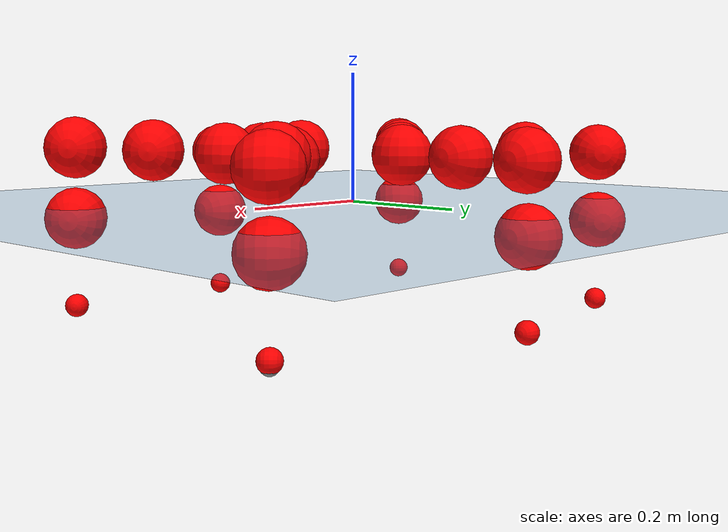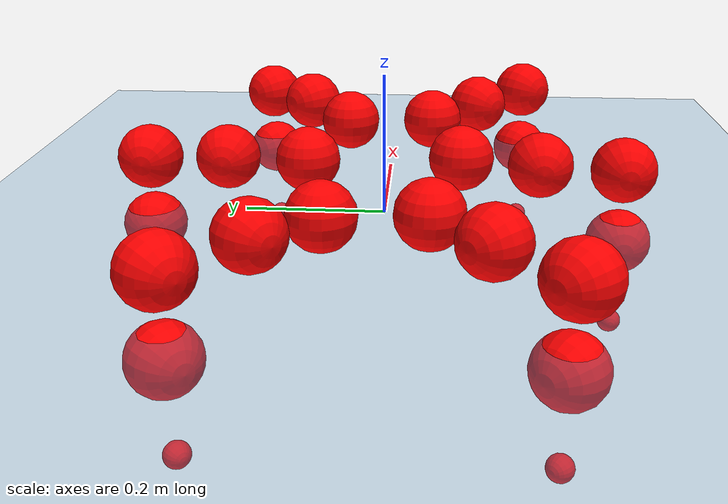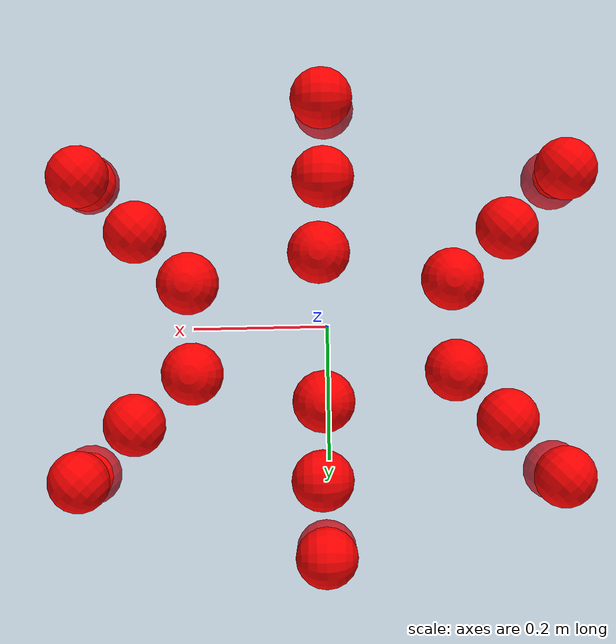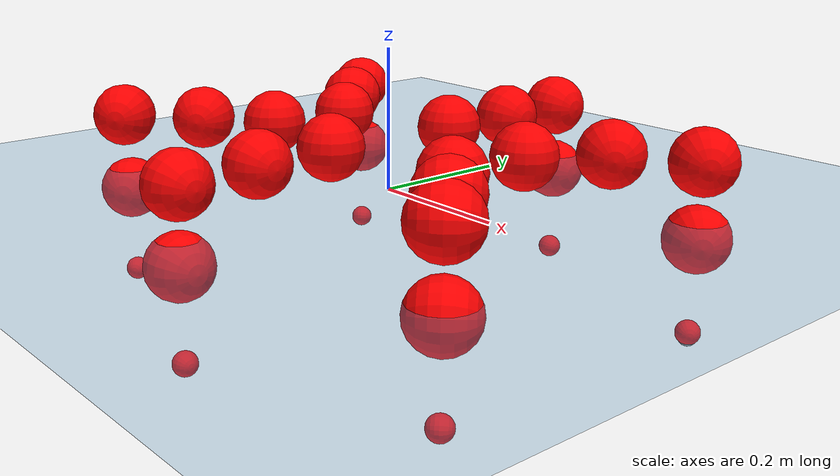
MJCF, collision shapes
<mujoco model="Golem">
  <compiler angle="radian" assetdir="assets" balanceinertia="true" inertiafromgeom="false"/>

  <option timestep="0.005" density="1.2" viscosity="2e-05"/>

  <size nkey="1"/>

  <visual>
    <quality shadowsize="8192"/>
    <map shadowclip="0.5"/>
  </visual>

  <default>
    <default class="/">
      <joint armature="0.01" damping="0.01" frictionloss="0.01"/>
      <geom contype="0" conaffinity="0" group="1" solref="-1000 -80"/>
      <site size="0.01 0.005 0.005" group="5"/>
      <general forcelimited="true" biastype="affine" gainprm="25" biasprm="0 -25 -0.5"/>
      <default class="visual">
        <geom type="mesh" group="2"/>
      </default>
      <default class="collision">
        <geom group="3"/>
      </default>
      <default class="foot">
        <geom size="0.01 0 0" condim="6" group="4" priority="1" solimp="0.015 1 0.01"/>
      </default>
      <default class="reward_collision_sphere">
        <geom group="5" rgba="1 0 0 1"/>
      </default>
    </default>
  </default>

  <asset>
    <texture type="skybox" colorspace="auto" name="//unnamed_texture_0" builtin="gradient" rgb1="0.95 0.95 0.95" rgb2="0.95 0.95 0.95" width="100" height="600"/>
    <texture type="2d" colorspace="auto" name="texplane" builtin="checker" rgb1="0.345 0.575 0.748" rgb2="0.345 0.575 0.748" markrgb="1 1 1" width="512" height="512"/>
    <material name="MatPlane" class="/" texture="texplane" texuniform="true" texrepeat="2 2" specular="0.9"/>
    <mesh name="body" class="/" file="body.stl" scale="0.001 0.001 0.001"/>
    <mesh name="coxa" class="/" file="coxa.stl" scale="0.001 0.001 0.001"/>
    <mesh name="femur" class="/" file="femur.stl" scale="0.001 0.001 0.001"/>
    <mesh name="tibia" class="/" file="tibia.stl" scale="0.001 0.001 0.001"/>
    <mesh name="tarsus" class="/" file="tarsus.stl" scale="0.001 0.001 0.001"/>
  </asset>

  <worldbody>
    <geom name="floor" class="/" size="100 100 0.125" type="plane" group="0" material="MatPlane"/>
    <light name="toplight_shadow" class="/" pos="0 0 5" dir="0.0990148 0.0990148 -0.990148" type="directional" ambient="0.04 0.04 0.04" diffuse="0.55 0.55 0.55" specular="0.12 0.12 0.12"/>
    <light name="toplight_fill" class="/" pos="0 0 5" dir="0.0990148 0.0990148 -0.990148" type="directional" castshadow="false" ambient="0.04 0.04 0.04" diffuse="0.3 0.3 0.3" specular="0.08 0.08 0.08"/>
    <body name="trunk" pos="0.0038545 0.000390649 0.00197143" quat="0.999994 -0.00342248 0.00080605 -0.000437209">
      <inertial pos="-0.00176722 -0.00825737 -0.00810099" quat="0.999958 0.00331836 0.00853543 0.00100211" mass="5.84635" diaginertia="0.0295224 0.0134288 0.0221275"/>
      <joint name="//unnamed_joint_0" type="free"/>
      <geom name="//unnamed_geom_1" class="/" pos="0 0 0.0736752" quat="1 0 0 0" type="mesh" rgba="0.9 0.9 0.9 1" mesh="body"/>
      <site name="imu" class="/" pos="0.153219 -0.0261345 0.121521" size="0.0114097"/>
      <camera name="track" class="/" pos="0 -2.10761 0" quat="0.707107 0.707107 0 0" mode="trackcom"/>
      <camera name="ego_camera" class="/" pos="0.158332 0 0.115117" quat="-0.5 -0.5 0.5 0.5"/>
      <body name="coxa_RR" pos="-0.213033 -0.0930298 0.072797" quat="0.383993 0.00166406 0.00182469 -0.923333">
        <inertial pos="-0.00277427 -0.000610749 -0.000812994" quat="0.999111 0.037077 0.0200685 0.000558417" mass="0.247063" diaginertia="0.0248663 0.0120068 0.0184151"/>
        <joint name="coxa_joint_RR" class="/" pos="0 0 0" axis="-0.000150818 0.00457982 -0.99999" range="-3.13537 3.30506" armature="0.0068393" damping="0" frictionloss="0.0115818"/>
        <geom name="//unnamed_geom_2" class="/" type="mesh" rgba="0.2 0.2 0.2 1" mesh="coxa"/>
        <geom name="//unnamed_geom_3" class="reward_collision_sphere" size="0.0456389" pos="-0.0365381 0 0"/>
        <body name="femur_RR" pos="0.0712214 -0.00579706 0.00300308" quat="0.499507 -0.500447 0.499402 0.500642">
          <inertial pos="-0.00649523 -0.000496789 -0.00115675" quat="0.999533 -0.00370503 0.00212958 0.0302571" mass="0.297179" diaginertia="0.0266345 0.0129342 0.0205546"/>
          <joint name="femur_joint_RR" class="/" pos="0 0 0" axis="-0.000356519 -0.00479858 -0.999988" range="-3.18091 3.19099" armature="0.0110491" damping="0.0513284" frictionloss="0.0111864"/>
          <geom name="//unnamed_geom_4" class="/" type="mesh" rgba="0.9 0.9 0.9 1" mesh="femur"/>
          <geom name="//unnamed_geom_5" class="reward_collision_sphere" size="0.0456389"/>
          <body name="tibia_RR" pos="-0.000734821 -0.12098 -0.00215558" quat="0.000143495 1 0.000397199 -0.000669313">
            <inertial pos="0.00410794 0.00277607 0.00212425" quat="0.999997 0.000500378 -0.00204894 0.00147541" mass="0.268735" diaginertia="0.0269887 0.0127748 0.0193199"/>
            <joint name="tibia_joint_RR" class="/" pos="0 0 0" axis="-0.0245905 0.00378554 0.99969" range="-3.13591 3.11277" armature="0.0110093" damping="0.0171612" frictionloss="0.0121076"/>
            <geom name="//unnamed_geom_6" class="/" type="mesh" rgba="0.2 0.2 0.2 1" mesh="tibia"/>
            <geom name="//unnamed_geom_7" class="reward_collision_sphere" size="0.0456389"/>
            <body name="tarsus_RR" pos="0.112571 -0.0040341 -0.000157486" quat="0.999999 -0.00100298 0.000667243 0.000109572">
              <inertial pos="0.0779568 -0.00131733 0.000467601" quat="0.501253 0.500191 0.498251 0.5003" mass="0.272436" diaginertia="0.0239562 0.0115933 0.0189674"/>
              <joint name="tarsus_joint_RR" class="/" pos="0 0 0" axis="-0.0107203 0.0103965 0.999888" stiffness="0.0103236" range="-3.1226 3.13056" armature="0.0125912" damping="0.0477557" frictionloss="0.0140742"/>
              <geom name="//unnamed_geom_8" class="/" type="mesh" rgba="0.9 0.9 0.9 1" mesh="tarsus"/>
              <geom name="foot_1" class="foot" size="0.00996068" pos="0.136409 0 0" quat="0 -0.707107 0 0.707107"/>
              <geom name="//unnamed_geom_10" class="reward_collision_sphere" size="0.0456389"/>
              <geom name="//unnamed_geom_11" class="reward_collision_sphere" size="0.0171146" pos="0.130928 0 0"/>
              <site name="foot_1" class="foot" pos="0.136409 0 0" quat="0 -0.707107 0 0.707107" size="0.0114097"/>
            </body>
          </body>
        </body>
      </body>
      <body name="coxa_RM" pos="0.00648547 -0.145341 0.0777022" quat="0.707144 6.40436e-06 -2.84974e-06 -0.707069">
        <inertial pos="0.00616175 0.00205798 -0.00147098" quat="0.99998 0.00405183 -0.00406503 -0.00252773" mass="0.271279" diaginertia="0.0248961 0.0117502 0.0189145"/>
        <joint name="coxa_joint_RM" class="/" pos="0 0 0" axis="0.00205853 -0.00367093 -0.999991" range="-3.22988 3.14033" armature="0.00912975" damping="0.00639823" frictionloss="0.0107831"/>
        <geom name="//unnamed_geom_12" class="/" type="mesh" rgba="0.2 0.2 0.2 1" mesh="coxa"/>
        <geom name="//unnamed_geom_13" class="reward_collision_sphere" size="0.0456389" pos="-0.0365381 0 0"/>
        <body name="femur_RM" pos="0.0737558 -0.00774788 -0.00619647" quat="0.50053 -0.499271 0.500326 0.499872">
          <inertial pos="0.00205484 0.00180623 -5.07243e-05" quat="0.999259 -0.00823182 0.0181628 0.0329355" mass="0.3246" diaginertia="0.0299605 0.0146865 0.0219075"/>
          <joint name="femur_joint_RM" class="/" pos="0 0 0" axis="-0.00304603 -0.000562955 -0.999995" range="-2.97969 3.11626" armature="0.0127221" damping="0.0202302" frictionloss="0.0113862"/>
          <geom name="//unnamed_geom_14" class="/" type="mesh" rgba="0.9 0.9 0.9 1" mesh="femur"/>
          <geom name="//unnamed_geom_15" class="reward_collision_sphere" size="0.0456389"/>
          <body name="tibia_RM" pos="0.00613545 -0.115497 0.000817244" quat="0.00303077 0.999992 -0.000395206 0.00273815">
            <inertial pos="0.00342827 -5.26113e-05 -0.00124565" quat="0.999773 0.0086659 0.0183709 -0.00638701" mass="0.296536" diaginertia="0.0255157 0.0136026 0.0216384"/>
            <joint name="tibia_joint_RM" class="/" pos="0 0 0" axis="0.00333491 -0.00106521 0.999994" stiffness="0.0330707" range="-3.14199 3.12036" armature="0.010195" damping="0.0250027" frictionloss="0.0106974"/>
            <geom name="//unnamed_geom_16" class="/" type="mesh" rgba="0.2 0.2 0.2 1" mesh="tibia"/>
            <geom name="//unnamed_geom_17" class="reward_collision_sphere" size="0.0456389"/>
            <body name="tarsus_RM" pos="0.106033 0.000579443 0.00434085" quat="0.999995 -0.00287845 -0.000362288 -0.0011275">
              <inertial pos="0.0712919 0.00194934 0.000140281" quat="0.499494 0.501363 0.498964 0.500176" mass="0.302045" diaginertia="0.0264023 0.0132283 0.019573"/>
              <joint name="tarsus_joint_RM" class="/" pos="0 0 0" axis="0.0121346 0.0238648 0.999642" range="-3.07022 2.97616" armature="0.0126543" damping="0.00596232" frictionloss="0.016053"/>
              <geom name="//unnamed_geom_18" class="/" type="mesh" rgba="0.9 0.9 0.9 1" mesh="tarsus"/>
              <geom name="foot_2" class="foot" size="0.0118896" pos="0.136409 0 0" quat="0 -0.707107 0 0.707107"/>
              <geom name="//unnamed_geom_20" class="reward_collision_sphere" size="0.0456389"/>
              <geom name="//unnamed_geom_21" class="reward_collision_sphere" size="0.0171146" pos="0.130928 0 0"/>
              <site name="foot_2" class="foot" pos="0.136409 0 0" quat="0 -0.707107 0 0.707107" size="0.0114097"/>
            </body>
          </body>
        </body>
      </body>
      <body name="coxa_RF" pos="0.222886 -0.09255 0.0769738" quat="0.923126 -0.00145504 -0.00195482 -0.384491">
        <inertial pos="-0.00650858 -0.00677041 0.000309625" quat="0.999968 0.00542634 0.00365923 -0.00456256" mass="0.303432" diaginertia="0.0261594 0.0133713 0.0204147"/>
        <joint name="coxa_joint_RF" class="/" pos="0 0 0" axis="0.00201311 0.00238901 -0.999995" stiffness="0.0419031" range="-3.15911 3.27533" armature="0.0114082" damping="0" frictionloss="0.0126848"/>
        <geom name="//unnamed_geom_22" class="/" type="mesh" rgba="0.2 0.2 0.2 1" mesh="coxa"/>
        <geom name="//unnamed_geom_23" class="reward_collision_sphere" size="0.0456389" pos="-0.0365381 0 0"/>
        <body name="femur_RF" pos="0.0696344 -0.000121128 0.00382235" quat="0.49936 -0.5023 0.500046 0.498285">
          <inertial pos="0.0007607 0.00215062 -0.0076409" quat="0.999632 -0.00785432 0.00555896 -0.0253697" mass="0.313317" diaginertia="0.0295458 0.0142682 0.0239847"/>
          <joint name="femur_joint_RF" class="/" pos="0 0 0" axis="0.0397566 5.80951e-05 -0.999209" range="-3.1821 3.17855" armature="0.00640624" damping="0.0241149" frictionloss="0.00898141"/>
          <geom name="//unnamed_geom_24" class="/" type="mesh" rgba="0.9 0.9 0.9 1" mesh="femur"/>
          <geom name="//unnamed_geom_25" class="reward_collision_sphere" size="0.0456389"/>
          <body name="tibia_RF" pos="-0.00282729 -0.114898 0.000634063" quat="0.000580379 1 -4.18407e-05 0.000621335">
            <inertial pos="-0.00156119 0.00098974 -0.00124744" quat="0.999741 -0.011939 0.0143995 0.0129918" mass="0.306623" diaginertia="0.0290561 0.0139224 0.0191179"/>
            <joint name="tibia_joint_RF" class="/" pos="0 0 0" axis="-0.0002157 0.00248596 0.999997" stiffness="0.0132665" range="-3.13491 3.0022" armature="0.0127313" damping="0.0107552" frictionloss="0.0115937"/>
            <geom name="//unnamed_geom_26" class="/" type="mesh" rgba="0.2 0.2 0.2 1" mesh="tibia"/>
            <geom name="//unnamed_geom_27" class="reward_collision_sphere" size="0.0456389"/>
            <body name="tarsus_RF" pos="0.104749 -2.57641e-05 -0.000367528" quat="0.999992 0.00384274 0.000708652 -0.000390852">
              <inertial pos="0.0725469 -0.000136111 -9.62397e-05" quat="0.488323 0.50841 0.502018 0.501036" mass="0.303808" diaginertia="0.0277621 0.0130648 0.0224113"/>
              <joint name="tarsus_joint_RF" class="/" pos="0 0 0" axis="-0.00278134 0.00229761 0.999993" range="-3.13634 3.09574" armature="0.0114629" damping="0.0167647" frictionloss="0.00996443"/>
              <geom name="//unnamed_geom_28" class="/" type="mesh" rgba="0.9 0.9 0.9 1" mesh="tarsus"/>
              <geom name="foot_3" class="foot" size="0.00883447" pos="0.136409 0 0" quat="0 -0.707107 0 0.707107"/>
              <geom name="//unnamed_geom_30" class="reward_collision_sphere" size="0.0456389"/>
              <geom name="//unnamed_geom_31" class="reward_collision_sphere" size="0.0171146" pos="0.130928 0 0"/>
              <site name="foot_3" class="foot" pos="0.136409 0 0" quat="0 -0.707107 0 0.707107" size="0.0114097"/>
            </body>
          </body>
        </body>
      </body>
      <body name="coxa_LR" pos="-0.216487 0.0913817 0.0696898" quat="0.384668 -0.00120208 0.00162643 0.923053">
        <inertial pos="-0.000321362 -0.00199333 0.000750405" quat="0.999978 -0.00515969 0.00369801 -0.00215336" mass="0.306172" diaginertia="0.0291688 0.0135974 0.0226466"/>
        <joint name="coxa_joint_LR" class="/" pos="0 0 0" axis="0.0243836 -0.0138877 -0.999606" stiffness="0.00152454" range="-3.2405 3.14157" armature="0.0119048" damping="0" frictionloss="0.0119707"/>
        <geom name="//unnamed_geom_32" class="/" type="mesh" rgba="0.2 0.2 0.2 1" mesh="coxa"/>
        <geom name="//unnamed_geom_33" class="reward_collision_sphere" size="0.0456389" pos="-0.0365381 0 0"/>
        <body name="femur_LR" pos="0.0662725 0.000866354 0.00679009" quat="0.500007 -0.499975 0.499984 0.500034">
          <inertial pos="0.00118236 -0.00234199 -0.00141341" quat="0.999998 0.00165077 -0.00100325 -0.000421652" mass="0.296932" diaginertia="0.0262586 0.0132587 0.0195374"/>
          <joint name="femur_joint_LR" class="/" pos="0 0 0" axis="-0.00612563 -0.0114329 0.999916" stiffness="0.018192" range="-3.01549 3.01824" armature="0.0114595" damping="0.0371641" frictionloss="0.0109461"/>
          <geom name="//unnamed_geom_34" class="/" type="mesh" rgba="0.9 0.9 0.9 1" mesh="femur"/>
          <geom name="//unnamed_geom_35" class="reward_collision_sphere" size="0.0456389"/>
          <body name="tibia_LR" pos="0.00366117 -0.118525 -0.000924068" quat="0.000367156 1 -0.00028055 0.000159179">
            <inertial pos="0.00802893 -0.000517799 0.00671891" quat="0.999942 -0.00181152 -0.010596 0.000473384" mass="0.296705" diaginertia="0.0263977 0.0117568 0.0204223"/>
            <joint name="tibia_joint_LR" class="/" pos="0 0 0" axis="0.00364638 0.0061281 -0.999975" stiffness="0.0158239" range="-3.27282 3.04956" armature="0.012291" damping="0" frictionloss="0.0113541"/>
            <geom name="//unnamed_geom_36" class="/" type="mesh" rgba="0.2 0.2 0.2 1" mesh="tibia"/>
            <geom name="//unnamed_geom_37" class="reward_collision_sphere" size="0.0456389"/>
            <body name="tarsus_LR" pos="0.110625 0.0019692 0.000916145" quat="1 0.000145518 0.000206308 -8.451e-05">
              <inertial pos="0.0738964 0.000520796 0.000919734" quat="0.500842 0.49173 0.503603 0.503729" mass="0.277856" diaginertia="0.0253772 0.011534 0.0186395"/>
              <joint name="tarsus_joint_LR" class="/" pos="0 0 0" axis="-0.0301247 -0.0161264 -0.999416" range="-3.1816 3.22768" armature="0.0103267" damping="0.0194242" frictionloss="0.00894756"/>
              <geom name="//unnamed_geom_38" class="/" type="mesh" rgba="0.9 0.9 0.9 1" mesh="tarsus"/>
              <geom name="foot_4" class="foot" size="0.0117921" pos="0.136409 0 0" quat="0.707107 0 -0.707107 0"/>
              <geom name="//unnamed_geom_40" class="reward_collision_sphere" size="0.0456389"/>
              <geom name="//unnamed_geom_41" class="reward_collision_sphere" size="0.0171146" pos="0.130928 0 0"/>
              <site name="foot_4" class="foot" pos="0.136409 0 0" quat="0.707107 0 -0.707107 0" size="0.0114097"/>
            </body>
          </body>
        </body>
      </body>
      <body name="coxa_LM" pos="0.00231329 0.144197 0.074906" quat="0.707218 -0.000227725 -0.000136237 0.706996">
        <inertial pos="-0.00655907 -0.00776529 0.000663909" quat="1 0.000737739 -0.00051425 0.000232775" mass="0.3002" diaginertia="0.027296 0.0130703 0.0205601"/>
        <joint name="coxa_joint_LM" class="/" pos="0 0 0" axis="0.00710505 0.00463891 -0.999964" stiffness="0.0205907" range="-3.19029 3.19071" armature="0.0082214" damping="0.0421324" frictionloss="0.0100796"/>
        <geom name="//unnamed_geom_42" class="/" type="mesh" rgba="0.2 0.2 0.2 1" mesh="coxa"/>
        <geom name="//unnamed_geom_43" class="reward_collision_sphere" size="0.0456389" pos="-0.0365381 0 0"/>
        <body name="femur_LM" pos="0.0782808 -0.00310549 0.00124069" quat="0.50205 -0.500994 0.497101 0.499841">
          <inertial pos="0.00317012 -0.00240114 -0.0020804" quat="0.999753 -0.0166965 0.00122302 -0.0146507" mass="0.302118" diaginertia="0.0257051 0.0137301 0.0208636"/>
          <joint name="femur_joint_LM" class="/" pos="0 0 0" axis="0.00430578 -0.00145416 0.99999" range="-3.14478 3.14209" armature="0.0159193" damping="0.0317126" frictionloss="0.0126537"/>
          <geom name="//unnamed_geom_44" class="/" type="mesh" rgba="0.9 0.9 0.9 1" mesh="femur"/>
          <geom name="//unnamed_geom_45" class="reward_collision_sphere" size="0.0456389"/>
          <body name="tibia_LM" pos="0.000445901 -0.111797 0.00395826" quat="0.000326781 1 0.000680327 -0.000438847">
            <inertial pos="0.000470149 -0.00584765 -0.00124823" quat="0.999999 -0.00130937 -0.000521204 0.000456925" mass="0.312059" diaginertia="0.0278418 0.0125608 0.0189845"/>
            <joint name="tibia_joint_LM" class="/" pos="0 0 0" axis="0.010713 -0.00699182 -0.999918" range="-3.14261 3.06029" armature="0.0114261" damping="0.0331512" frictionloss="0.0128723"/>
            <geom name="//unnamed_geom_46" class="/" type="mesh" rgba="0.2 0.2 0.2 1" mesh="tibia"/>
            <geom name="//unnamed_geom_47" class="reward_collision_sphere" size="0.0456389"/>
            <body name="tarsus_LM" pos="0.103171 0.00360029 0.000599504" quat="1 -4.89427e-06 -2.87781e-06 -7.16743e-06">
              <inertial pos="0.0704508 0.000277608 0.000696718" quat="0.502114 0.492868 0.505056 0.499881" mass="0.24785" diaginertia="0.0244368 0.0123661 0.0200357"/>
              <joint name="tarsus_joint_LM" class="/" pos="0 0 0" axis="-0.00203364 -0.00271472 -0.999994" range="-3.13202 3.20758" armature="0.0104502" damping="0" frictionloss="0.0115081"/>
              <geom name="//unnamed_geom_48" class="/" type="mesh" rgba="0.9 0.9 0.9 1" mesh="tarsus"/>
              <geom name="foot_5" class="foot" size="0.0116581" pos="0.136409 0 0" quat="0.707107 0 -0.707107 0"/>
              <geom name="//unnamed_geom_50" class="reward_collision_sphere" size="0.0456389"/>
              <geom name="//unnamed_geom_51" class="reward_collision_sphere" size="0.0171146" pos="0.130928 0 0"/>
              <site name="foot_5" class="foot" pos="0.136409 0 0" quat="0.707107 0 -0.707107 0" size="0.0114097"/>
            </body>
          </body>
        </body>
      </body>
      <body name="coxa_LF" pos="0.218444 0.0903876 0.075145" quat="0.923895 0.000131693 -6.12645e-05 0.382646">
        <inertial pos="7.70126e-05 0.0013406 0.000401468" quat="0.999999 8.08134e-05 0.00112421 -0.000233196" mass="0.31036" diaginertia="0.0274639 0.0127036 0.0195044"/>
        <joint name="coxa_joint_LF" class="/" pos="0 0 0" axis="0.00478707 -0.0355012 -0.999358" stiffness="0.0031603" range="-3.09247 3.15721" armature="0.0115014" damping="0.0130759" frictionloss="0.011711"/>
        <geom name="//unnamed_geom_52" class="/" type="mesh" rgba="0.2 0.2 0.2 1" mesh="coxa"/>
        <geom name="//unnamed_geom_53" class="reward_collision_sphere" size="0.0456389" pos="-0.0365381 0 0"/>
        <body name="femur_LF" pos="0.0737905 -0.00796414 0.00830473" quat="0.50034 -0.500197 0.499442 0.50002">
          <inertial pos="0.00544917 -0.00103794 -0.00101188" quat="0.999968 0.00069191 -0.00770762 -0.00212719" mass="0.290115" diaginertia="0.0271896 0.0140879 0.021696"/>
          <joint name="femur_joint_LF" class="/" pos="0 0 0" axis="0.025804 -0.00322657 0.999662" range="-3.15112 3.26488" armature="0.0140769" damping="0.0176525" frictionloss="0.0123449"/>
          <geom name="//unnamed_geom_54" class="/" type="mesh" rgba="0.9 0.9 0.9 1" mesh="femur"/>
          <geom name="//unnamed_geom_55" class="reward_collision_sphere" size="0.0456389"/>
          <body name="tibia_LF" pos="0.00672191 -0.116673 -0.00118033" quat="-0.000394402 1 -0.000226231 0.00023046">
            <inertial pos="0.000615152 -0.00114335 0.00209856" quat="0.999486 0.00132543 0.0320381 -0.000474572" mass="0.30626" diaginertia="0.0270286 0.0131789 0.0199487"/>
            <joint name="tibia_joint_LF" class="/" pos="0 0 0" axis="0.0015299 0.000906555 -0.999998" range="-3.11208 3.17553" armature="0.0161076" damping="0.0364344" frictionloss="0.0118266"/>
            <geom name="//unnamed_geom_56" class="/" type="mesh" rgba="0.2 0.2 0.2 1" mesh="tibia"/>
            <geom name="//unnamed_geom_57" class="reward_collision_sphere" size="0.0456389"/>
            <body name="tarsus_LF" pos="0.10412 -0.000881191 -0.000999238" quat="0.999992 -0.000269065 -0.00177612 -0.00367648">
              <inertial pos="0.0685326 0.0060718 0.00216054" quat="0.491664 0.504235 0.501924 0.502082" mass="0.321689" diaginertia="0.0279543 0.0137084 0.0208115"/>
              <joint name="tarsus_joint_LF" class="/" pos="0 0 0" axis="0.0292038 -0.0016554 -0.999572" stiffness="0.00629195" range="-3.25045 3.18486" armature="0.0125449" damping="0" frictionloss="0.0106238"/>
              <geom name="//unnamed_geom_58" class="/" type="mesh" rgba="0.9 0.9 0.9 1" mesh="tarsus"/>
              <geom name="foot_6" class="foot" size="0.0134222" pos="0.136409 0 0" quat="0.707107 0 -0.707107 0"/>
              <geom name="//unnamed_geom_60" class="reward_collision_sphere" size="0.0456389"/>
              <geom name="//unnamed_geom_61" class="reward_collision_sphere" size="0.0171146" pos="0.130928 0 0"/>
              <site name="foot_6" class="foot" pos="0.136409 0 0" quat="0.707107 0 -0.707107 0" size="0.0114097"/>
            </body>
          </body>
        </body>
      </body>
    </body>
  </worldbody>

  <contact>
    <pair class="/" geom1="floor" geom2="foot_1" name="//unnamed_contact_0"/>
    <pair class="/" geom1="floor" geom2="foot_2" name="//unnamed_contact_1"/>
    <pair class="/" geom1="floor" geom2="foot_3" name="//unnamed_contact_2"/>
    <pair class="/" geom1="floor" geom2="foot_4" name="//unnamed_contact_3"/>
    <pair class="/" geom1="floor" geom2="foot_5" name="//unnamed_contact_4"/>
    <pair class="/" geom1="floor" geom2="foot_6" name="//unnamed_contact_5"/>
  </contact>

  <actuator>
    <general name="coxa_joint_RR" class="/" joint="coxa_joint_RR" forcerange="-9.03542 9.03542" gainprm="25.9633" biasprm="0 -25.9633 -0.590578"/>
    <general name="femur_joint_RR" class="/" joint="femur_joint_RR" forcerange="-8.23803 8.23803" gainprm="25.9633" biasprm="0 -25.9633 -0.590578"/>
    <general name="tibia_joint_RR" class="/" joint="tibia_joint_RR" forcerange="-8.90352 8.90352" gainprm="25.9633" biasprm="0 -25.9633 -0.590578"/>
    <general name="tarsus_joint_RR" class="/" joint="tarsus_joint_RR" forcerange="-7.98275 7.98275" gainprm="25.9633" biasprm="0 -25.9633 -0.590578"/>
    <general name="coxa_joint_RM" class="/" joint="coxa_joint_RM" forcerange="-8.08151 8.08151" gainprm="25.9633" biasprm="0 -25.9633 -0.590578"/>
    <general name="femur_joint_RM" class="/" joint="femur_joint_RM" forcerange="-9.73139 9.73139" gainprm="25.9633" biasprm="0 -25.9633 -0.590578"/>
    <general name="tibia_joint_RM" class="/" joint="tibia_joint_RM" forcerange="-8.29304 8.29304" gainprm="25.9633" biasprm="0 -25.9633 -0.590578"/>
    <general name="tarsus_joint_RM" class="/" joint="tarsus_joint_RM" forcerange="-8.40485 8.40485" gainprm="25.9633" biasprm="0 -25.9633 -0.590578"/>
    <general name="coxa_joint_RF" class="/" joint="coxa_joint_RF" forcerange="-9.90248 9.90248" gainprm="25.9633" biasprm="0 -25.9633 -0.590578"/>
    <general name="femur_joint_RF" class="/" joint="femur_joint_RF" forcerange="-9.58739 9.58739" gainprm="25.9633" biasprm="0 -25.9633 -0.590578"/>
    <general name="tibia_joint_RF" class="/" joint="tibia_joint_RF" forcerange="-7.20029 7.20029" gainprm="25.9633" biasprm="0 -25.9633 -0.590578"/>
    <general name="tarsus_joint_RF" class="/" joint="tarsus_joint_RF" forcerange="-8.13584 8.13584" gainprm="25.9633" biasprm="0 -25.9633 -0.590578"/>
    <general name="coxa_joint_LR" class="/" joint="coxa_joint_LR" forcerange="-7.62921 7.62921" gainprm="25.9633" biasprm="0 -25.9633 -0.590578"/>
    <general name="femur_joint_LR" class="/" joint="femur_joint_LR" forcerange="-8.86944 8.86944" gainprm="25.9633" biasprm="0 -25.9633 -0.590578"/>
    <general name="tibia_joint_LR" class="/" joint="tibia_joint_LR" forcerange="-10.4846 10.4846" gainprm="25.9633" biasprm="0 -25.9633 -0.590578"/>
    <general name="tarsus_joint_LR" class="/" joint="tarsus_joint_LR" forcerange="-5.94822 5.94822" gainprm="25.9633" biasprm="0 -25.9633 -0.590578"/>
    <general name="coxa_joint_LM" class="/" joint="coxa_joint_LM" forcerange="-7.90052 7.90052" gainprm="25.9633" biasprm="0 -25.9633 -0.590578"/>
    <general name="femur_joint_LM" class="/" joint="femur_joint_LM" forcerange="-8.38971 8.38971" gainprm="25.9633" biasprm="0 -25.9633 -0.590578"/>
    <general name="tibia_joint_LM" class="/" joint="tibia_joint_LM" forcerange="-8.55897 8.55897" gainprm="25.9633" biasprm="0 -25.9633 -0.590578"/>
    <general name="tarsus_joint_LM" class="/" joint="tarsus_joint_LM" forcerange="-8.41748 8.41748" gainprm="25.9633" biasprm="0 -25.9633 -0.590578"/>
    <general name="coxa_joint_LF" class="/" joint="coxa_joint_LF" forcerange="-8.52324 8.52324" gainprm="25.9633" biasprm="0 -25.9633 -0.590578"/>
    <general name="femur_joint_LF" class="/" joint="femur_joint_LF" forcerange="-8.23869 8.23869" gainprm="25.9633" biasprm="0 -25.9633 -0.590578"/>
    <general name="tibia_joint_LF" class="/" joint="tibia_joint_LF" forcerange="-8.41111 8.41111" gainprm="25.9633" biasprm="0 -25.9633 -0.590578"/>
    <general name="tarsus_joint_LF" class="/" joint="tarsus_joint_LF" forcerange="-7.61908 7.61908" gainprm="25.9633" biasprm="0 -25.9633 -0.590578"/>
  </actuator>

  <sensor>
    <gyro site="imu" name="imu_angular_velocity"/>
    <velocimeter site="imu" name="imu_linear_velocity"/>
    <framelinvel objtype="site" objname="foot_1" name="foot_1_global_linear_velocity"/>
    <framelinvel objtype="site" objname="foot_2" name="foot_2_global_linear_velocity"/>
    <framelinvel objtype="site" objname="foot_3" name="foot_3_global_linear_velocity"/>
    <framelinvel objtype="site" objname="foot_4" name="foot_4_global_linear_velocity"/>
    <framelinvel objtype="site" objname="foot_5" name="foot_5_global_linear_velocity"/>
    <framelinvel objtype="site" objname="foot_6" name="foot_6_global_linear_velocity"/>
  </sensor>

  <keyframe>
    <key name="home" qpos="0 0 0.1457 1 0 0 0 0 0 0 0 0 0 0 0 0 0 0 0 0 0 0 0 0 0 0 0 0 0 0 0"/>
  </keyframe>
</mujoco>
